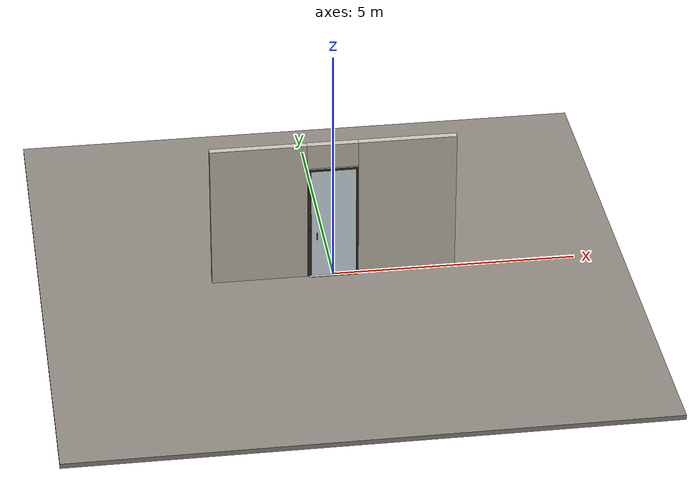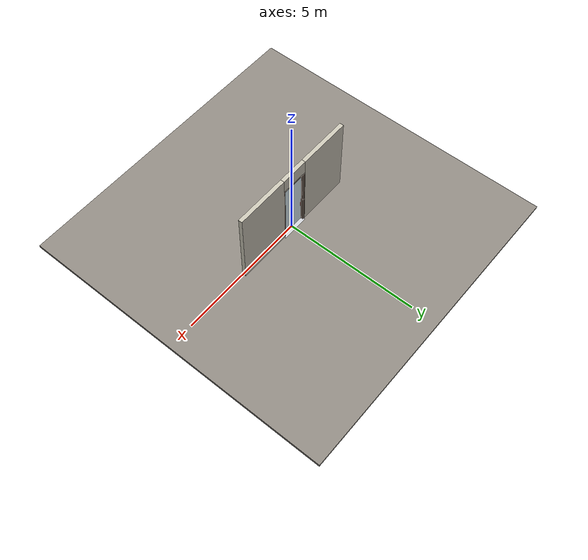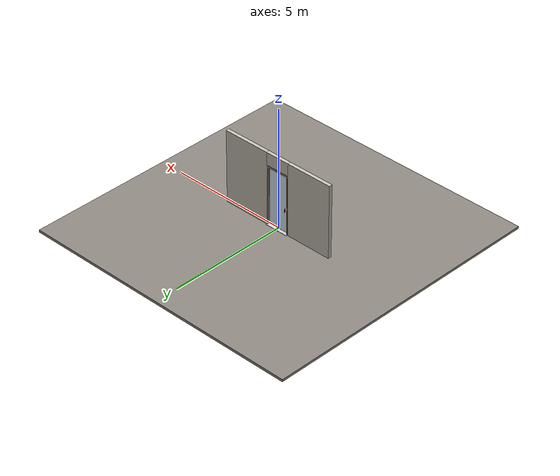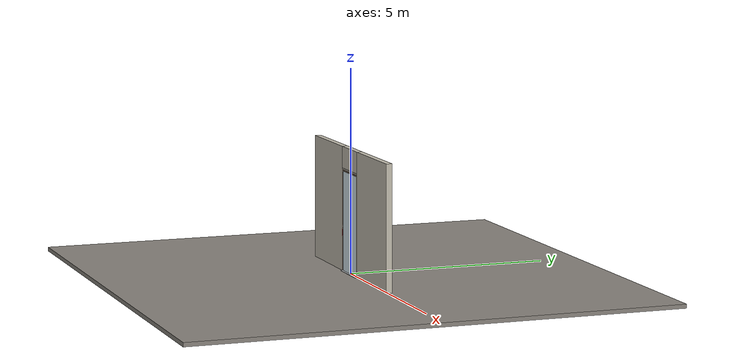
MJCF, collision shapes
<?xml version="1.0" ?>
<mujoco model="db0227_swing_single_minimal">
  <compiler angle="radian" meshdir="../../hardware" texturedir="../../textures" autolimits="true" inertiafromgeom="false"/>
  <option timestep="0.002" integrator="implicitfast" cone="elliptic" impratio="10" noslip_iterations="3">
    <flag multiccd="enable"/>
  </option>
  <size memory="16M"/>
  <default>
    <geom condim="4" solref="0.005 1" solimp="0.95 0.99 0.001"/>
    <joint solreflimit="0.005 1" solimplimit="0.95 0.99 0.001"/>
    <tendon solreflimit="0.005 1"/>
    <equality solref="0.002 1"/>
  </default>
  <visual>
    <headlight ambient="0.4 0.4 0.4" diffuse="0.7 0.7 0.7" specular="0.2 0.2 0.2"/>
    <quality shadowsize="4096"/>
    <map znear="0.01" zfar="60"/>
  </visual>
  <asset>
    <mesh name="pull_1e5d69a91a" file="pull_1e5d69a91a.obj"/>
    <material name="mat_floor" rgba="0.55 0.53 0.5 1" specular="0.2" shininess="0.15" reflectance="0"/>
    <material name="mat_wall" rgba="0.78 0.76 0.7 1" specular="0.2" shininess="0.1" reflectance="0"/>
    <material name="mat_leaf" rgba="0.85 0.92 0.95 0.25" specular="0.2" shininess="0.95" reflectance="0.1"/>
    <material name="mat_glass_leaf" rgba="0.85 0.92 0.95 0.25" specular="0.2" shininess="0.95" reflectance="0.1"/>
    <material name="mat_patch" rgba="0.75 0.76 0.77 1" specular="0.8" shininess="0.65" reflectance="0.4"/>
    <material name="mat_hinge" rgba="0.65 0.66 0.68 1" specular="0.74" shininess="0.5" reflectance="0.36"/>
    <material name="mat_op_stainless" rgba="0.75 0.76 0.77 1" specular="0.8" shininess="0.65" reflectance="0.4"/>
    <material name="mat_deadbolt" rgba="0.85 0.66 0.3 1" specular="0.8" shininess="0.75" reflectance="0.4"/>
    <material name="mat_frame" rgba="0.22 0.17 0.13 1" specular="0.8" shininess="0.6" reflectance="0.4"/>
    <material name="mat_seal" rgba="0.1 0.1 0.1 1" specular="0.2" shininess="0.1" reflectance="0"/>
    <material name="mat_threshold" rgba="0.8 0.81 0.83 1" specular="0.8" shininess="0.6" reflectance="0.4"/>
    <material name="mat_closer" rgba="0.75 0.76 0.77 1" specular="0.8" shininess="0.65" reflectance="0.4"/>
    <texture name="skybox" type="skybox" builtin="gradient" rgb1="0.6 0.7 0.85" rgb2="0.9 0.92 0.95" width="256" height="256"/>
  </asset>
  <worldbody>
    <light name="sun" pos="1.5 -2.5 4" dir="-0.3 0.5 -0.8" directional="true" diffuse="0.8 0.8 0.8" specular="0.3 0.3 0.3" castshadow="true"/>
    <light name="fill" pos="-1.5 2.5 3" dir="0.3 -0.5 -0.7" directional="true" diffuse="0.35 0.35 0.4" castshadow="false"/>
    <camera name="robot_view" pos="0 -2.879812 2.043887" xyaxes="1 0 0 0 0.26963 0.962964" fovy="52"/>
    <camera name="far_view" pos="0 2.965813 2.043887" xyaxes="-1 0 0 0 -0.26963 0.962964" fovy="52"/>
    <camera name="iso" pos="-2.221337 -2.412162 2.511538" xyaxes="0.741536 -0.670913 0 0.242917 0.268487 0.932151" fovy="46"/>
    <camera name="detail_handle" pos="-0.1715 -0.8825 1.245" xyaxes="0.97561 0.219512 0 -0.070934 0.315262 0.94635" fovy="38"/>
    <geom name="floor" type="box" size="6 6 0.05" pos="0 0 -0.05" material="mat_floor" group="0" contype="1" conaffinity="1" friction="0.8 0.005 0.0001" density="2400"/>
    <geom name="wall_left" type="box" size="0.98225 0.0725 1.5255" pos="-1.51775 0.043 1.5255" material="mat_wall" group="0" contype="1" conaffinity="1" friction="0.6 0.005 0.0001" density="800"/>
    <geom name="wall_right" type="box" size="0.99725 0.0725 1.5255" pos="1.50275 0.043 1.5255" material="mat_wall" group="0" contype="1" conaffinity="1" friction="0.6 0.005 0.0001" density="800"/>
    <geom name="wall_header" type="box" size="0.5205 0.0725 0.2625" pos="-0.015 0.043 2.7885" material="mat_wall" group="0" contype="1" conaffinity="1" friction="0.6 0.005 0.0001" density="800"/>
    <geom name="jamb_hinge" type="box" size="0.0225 0.0725 1.2255" pos="0.483 0.043 1.2255" material="mat_frame" group="0" contype="1" conaffinity="1" friction="0.6 0.005 0.0001" density="300"/>
    <geom name="strike_1105_wall_n" type="box" size="0.0375 0.053 0.0155" pos="-0.498 0.0625 1.105" material="mat_frame" group="0" contype="1" conaffinity="1" friction="0.6 0.005 0.0001" density="300"/>
    <geom name="strike_1105_wall_p" type="box" size="0.0375 0.01 0.0155" pos="-0.498 -0.0195 1.105" material="mat_frame" group="0" contype="1" conaffinity="1" friction="0.6 0.005 0.0001" density="300"/>
    <geom name="strike_1105_back" type="box" size="0.0228 0.0095 0.0155" pos="-0.5127 0 1.105" material="mat_frame" group="0" contype="1" conaffinity="1" friction="0.6 0.005 0.0001" density="300"/>
    <geom name="jamb_strike_0" type="box" size="0.0375 0.0725 0.54475" pos="-0.498 0.043 0.54475" material="mat_frame" group="0" contype="1" conaffinity="1" friction="0.6 0.005 0.0001" density="300"/>
    <geom name="jamb_strike_1" type="box" size="0.0375 0.0725 0.66525" pos="-0.498 0.043 1.78575" material="mat_frame" group="0" contype="1" conaffinity="1" friction="0.6 0.005 0.0001" density="300"/>
    <geom name="jamb_head" type="box" size="0.5205 0.0725 0.0225" pos="-0.015 0.043 2.4735" material="mat_frame" group="0" contype="1" conaffinity="1" friction="0.6 0.005 0.0001" density="300"/>
    <geom name="head_stud" type="box" size="0.5205 0.0725 0.015" pos="-0.015 0.043 2.511" material="mat_wall" group="0" contype="1" conaffinity="1" friction="0.6 0.005 0.0001" density="500"/>
    <geom name="stop_hinge" type="box" size="0.0055 0.016 1.2255" pos="0.455 0.039 1.2255" material="mat_frame" group="0" contype="1" conaffinity="1" friction="0.6 0.005 0.0001" density="300"/>
    <geom name="stop_strike" type="box" size="0.0055 0.016 1.2255" pos="-0.455 0.039 1.2255" material="mat_frame" group="0" contype="1" conaffinity="1" friction="0.6 0.005 0.0001" density="300"/>
    <geom name="stop_head" type="box" size="0.4605 0.016 0.0055" pos="0 0.039 2.4455" material="mat_frame" group="0" contype="1" conaffinity="1" friction="0.6 0.005 0.0001" density="300"/>
    <geom name="threshold" type="box" size="0.5055 0.1225 0.004" pos="0 0.043 0.004" material="mat_threshold" group="0" contype="1" conaffinity="1" friction="0.6 0.005 0.0001" density="2700"/>
    <site name="approach_point" pos="0 -1.5 0" quat="1 0 0 0" size="0.05" rgba="0.2 0.9 0.2 0.5" group="4"/>
    <site name="goal_point" pos="0 1.5 0" quat="1 0 0 0" size="0.05" rgba="0.2 0.9 0.2 0.5" group="4"/>
    <site name="door_plane_center" pos="0 0 1.2255" quat="1 0 0 0" size="0.02" rgba="0.2 0.9 0.2 0.5" group="4"/>
    <body name="leaf" pos="0.4605 0 0">
      <inertial pos="-0.463624 0 1.225292" mass="111.119739" quat="0.50056 -0.50056 -0.499439 -0.499439" diaginertia="7.821281903 54.580274356 62.351392701"/>
      <joint name="leaf_hinge" type="hinge" axis="0 0 1" pos="-0.003 -0.0295 0" limited="true" range="0 1.832596" solreflimit="0.02 1" damping="8.307281" frictionloss="2.640611" stiffness="31.258031" springref="-2.073067" armature="0.02"/>
      <geom name="leaf_glass" type="box" size="0.457 0.0225 1.219" pos="-0.46 0 1.228" material="mat_glass_leaf" group="0" contype="1" conaffinity="1" friction="0.4 0.005 0.0001" density="1"/>
      <geom name="leaf_pull_n" type="mesh" mesh="pull_1e5d69a91a" pos="-0.812 -0.0225 0.965" quat="0 0 -0.707107 0.707107" material="mat_op_stainless" group="1" contype="0" conaffinity="0" density="3000"/>
      <geom name="leaf_pull_col_n" type="capsule" size="0.0095 0.08" pos="-0.812 -0.0825 0.965" material="mat_op_stainless" group="3" contype="1" conaffinity="1" rgba="0.8 0.3 0.3 0.25" friction="0.7 0.01 0.0001" density="3000"/>
      <geom name="leaf_pull_p" type="mesh" mesh="pull_1e5d69a91a" pos="-0.812 0.0225 0.965" quat="0 0 0.707107 0.707107" material="mat_op_stainless" group="1" contype="0" conaffinity="0" density="3000"/>
      <geom name="leaf_pull_col_p" type="capsule" size="0.0095 0.08" pos="-0.812 0.0825 0.965" material="mat_op_stainless" group="3" contype="1" conaffinity="1" rgba="0.8 0.3 0.3 0.25" friction="0.7 0.01 0.0001" density="3000"/>
      <site name="leaf_pull_grip_n" pos="-0.812 -0.0825 0.965" quat="1 0 0 0" size="0.012" rgba="0.2 0.9 0.2 0.5" group="4"/>
      <site name="leaf_pull_grip_p" pos="-0.812 0.0825 0.965" quat="1 0 0 0" size="0.012" rgba="0.2 0.9 0.2 0.5" group="4"/>
      <site name="leaf_edge_mid" pos="-0.917 0 1.219" quat="1 0 0 0" size="0.02" rgba="0.2 0.9 0.2 0.5" group="4"/>
    </body>
  </worldbody>
  <sensor>
    <jointpos name="leaf_hinge_pos" joint="leaf_hinge"/>
    <jointvel name="leaf_hinge_vel" joint="leaf_hinge"/>
  </sensor>
</mujoco>
